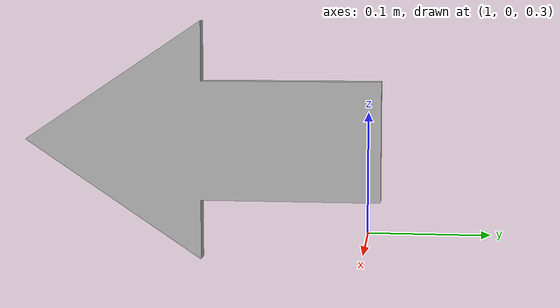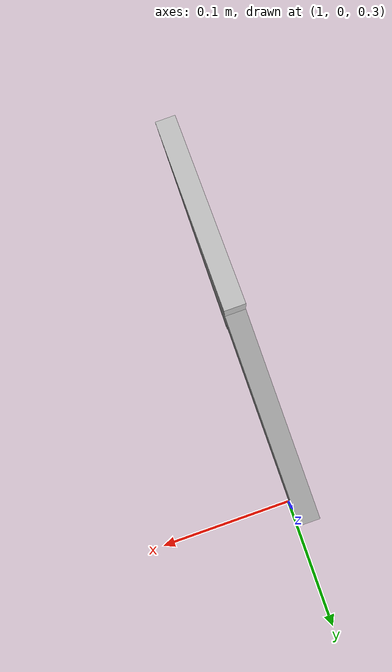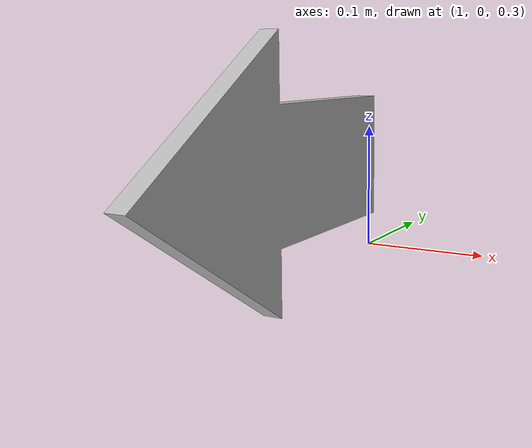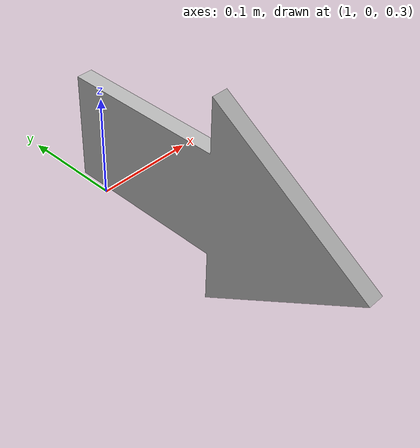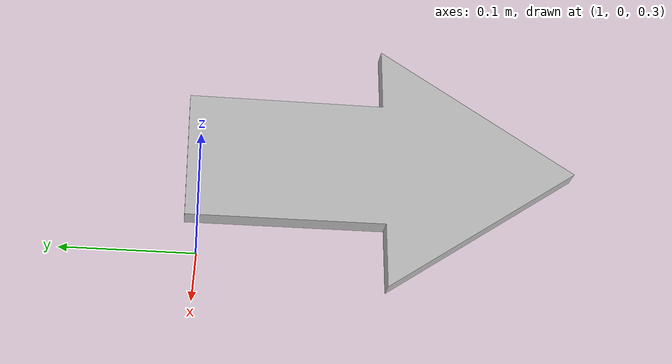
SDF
<?xml version="1.0" ?>
<sdf version="1.6">
  <model name="left_arrow">
    <static>true</static>  <!-- Keep the arrow fixed in place -->

    <!-- Position the arrow in front of the robot -->
    <pose>1 0 0.5 1.57 0 4.71</pose>  <!-- Adjust as needed -->

    <link name="arrow_link">
      <!-- Visual Representation -->
      <visual name="arrow_visual">
        <geometry>
          <mesh>
            <uri>file:///home/mocha1410/.gazebo/models/right_arrow/meshes/left_arrow.stl</uri>
            <scale>0.005 0.005 0.005</scale>  <!-- Adjust size -->
          </mesh>
        </geometry>
      </visual>

      <!-- Collision (optional) -->
      <collision name="arrow_collision">
        <geometry>
          <mesh>
            <uri>file:///home/mocha1410/.gazebo/models/right_arrow/meshes/left_arrow.stl</uri>
            <scale>0.005 0.005 0.005</scale>
          </mesh>
        </geometry>
      </collision>
    </link>
  </model>
</sdf>
